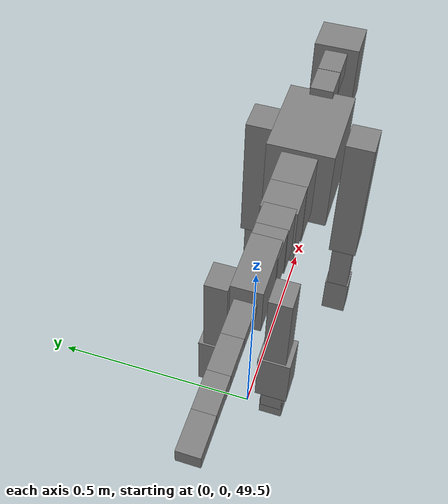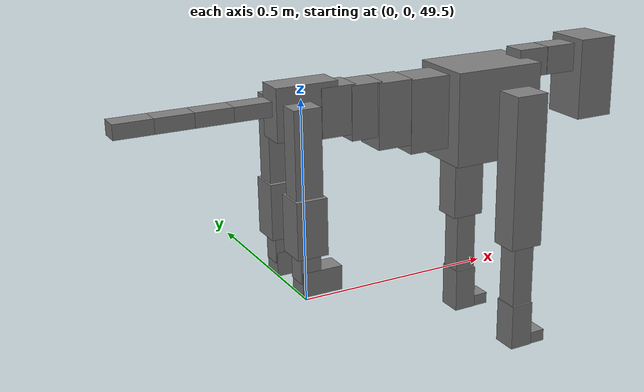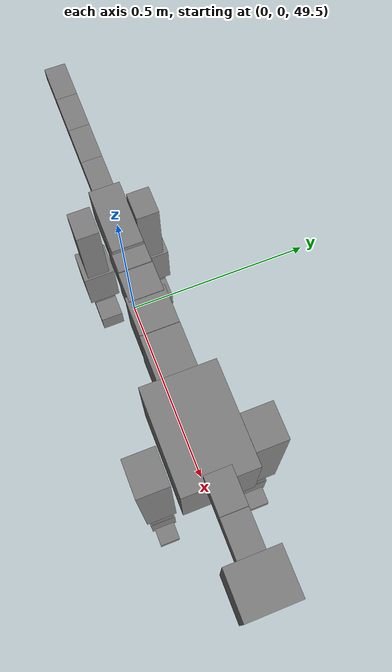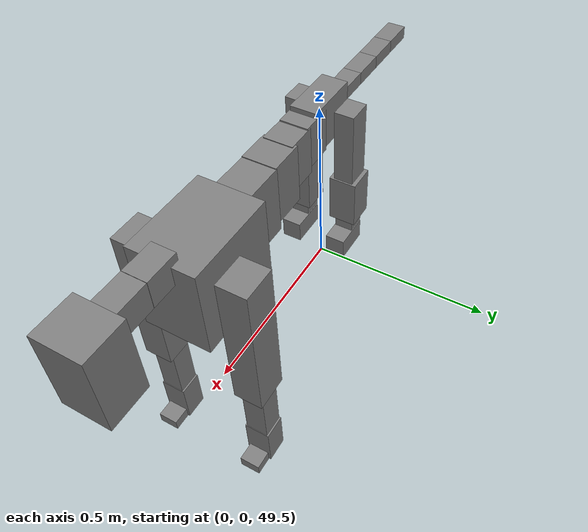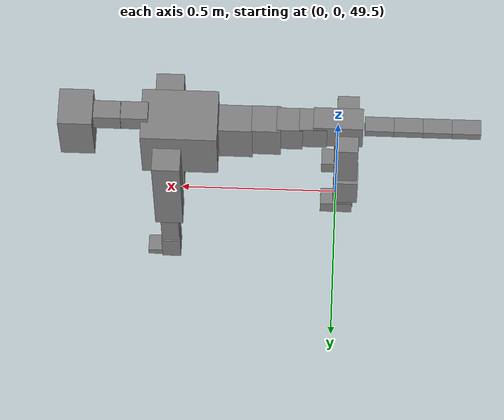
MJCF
<mujoco model="dog">

    <default>
        <joint armature="0.02" stiffness="1" damping="0.2" limited="true"/>
        <geom condim="3" friction="1 0.05 0.05" margin="0.01"/>
        <motor ctrllimited="true" ctrlrange="-1.0 1.0" forcelimited="true" gear="50"/>
    </default>

    <compiler inertiafromgeom="true" angle="radian"/>

    <option timestep="0.016" iterations="50" tolerance="1e-10" solver="Newton" jacobian="dense" cone="pyramidal"/>

    <size nconmax="20000" njmax="60000" nstack="5000000"/>
    <visual>
        <map force="0.1" zfar="30"/>
        <rgba haze="0.15 0.25 0.35 1"/>
        <quality shadowsize="2048"/>
        <global offwidth="800" offheight="800"/>
    </visual>

    <asset>
        <texture type="skybox" builtin="gradient" rgb1="0.3 0.5 0.7" rgb2="0 0 0" width="512" height="512"/>
        <texture name="texplane" type="2d" builtin="checker" rgb1=".2 .3 .4" rgb2=".1 0.15 0.2" width="512" height="512"
                 mark="cross" markrgb=".8 .8 .8"/>
        <texture name="texgeom" type="cube" builtin="flat" mark="cross" width="127" height="1278" rgb1="0.8 0.6 0.4"
                 rgb2="0.8 0.6 0.4" markrgb="1 1 1" random="0.01"/>

        <material name="matplane" reflectance="0.3" texture="texplane" texrepeat="1 1" texuniform="true"/>
        <material name="matgeom" texture="texgeom" texuniform="true" rgba="0.8 0.6 .4 1"/>
    </asset>

    <worldbody>
        <geom name="floor" pos="0 0 0" size="0 0 .25" type="plane" material="matplane" condim="3"/>

        <light directional="false" diffuse=".2 .2 .2" specular="0 0 0" pos="0 0 5" dir="0 0 -1" castshadow="false"/>
        <light mode="targetbodycom" target="torso" directional="false" diffuse=".8 .8 .8" specular="0.3 0.3 0.3"
               pos="0 0 4.0" dir="0 0 -1"/>

        <body name="root" pos="0 0 50">
            <freejoint name="root_1"/>
            <geom type="box" pos="0 0 -0.02" size="0.0774  0.0358  0.063" density="2030"/>

            <body name="spine1" pos="0.054 0 0">
                <joint name="spine1_y" axis="0 1 0" range="0 0.7" limited="true"/>
                <geom type="box" pos="0.02375 0 -0.03" size="0.04375  0.0375  0.05985" density="2030"/>

                <body name="spine2" pos="0.0612 0 0">
                    <joint name="spine2_y" axis="0 1 0" range="-0.15 0.15" limited="true"/>
                    <geom type="box" pos="0.03555  0  -0.04" size="0.04055  0.039  0.06615" density="2030"/>

                    <body name="spine3" pos="0.0730 0 0">
                        <joint name="spine3_y" axis="0 1 0" range="-0.15 0.15" limited="true"/>
                        <geom type="box" pos="0.03555  0  -0.057" size="0.04555  0.0445  0.081" density="2030"/>

                        <body name="spine4" pos="0.0780 0 0">
                            <joint name="spine4_y" axis="0 1 0" range="-0.15 0.15" limited="true"/>
                            <geom type="box" pos="0.05265  0  -0.07" size="0.05265  0.045  0.09135" density="2030"/>

                            <body name="torso" pos="0.1082 0 0">
                                <joint name="torso_y" axis="0 1 0" range="-0.15 0.15" limited="true"/>
                                <geom type="box" pos="0.11925  0  -0.085" size="0.11925  0.085  0.11745"
                                      density="2030"/>

                                <body name="neck1" pos="0.2160  0   0.0180">
                                    <joint name="neck1_y" axis="0 1 0" range="-1.2  -1" limited="true"/>
                                    <geom type="box" pos="0.0423  0  0" size="0.0423  0.03  0.036" density="2325"/>

                                    <body name="neck2" pos="0.0853  0  0">
                                        <joint name="neck2_y" axis="0 1 0" range="0.1  0" limited="true"/>
                                        <geom type="box" pos="0.0423  0  0" size="0.0423  0.03  0.036" density="2325"/>

                                        <body name="head" pos="0.0853  0  0">
                                            <joint name="head_y" axis="0 1 0" range="-0.3  -0.2" limited="true"/>
                                            <geom type="box" pos="0.0531  0  -0.055" size="0.0531  0.06  0.1044"
                                                  density="4030"/>

                                        </body>
                                    </body>
                                </body>

                                <body name="front_shoulder" pos="0.156  0   -0.0480">
                                    <joint name="front_shoulder_y" axis="0 1 0" range="-1 1.5" limited="true"/>
                                    <geom type="box" pos="0 0.13 -0.1704" size="0.0441  0.0377  0.1971" density="1158"/>
                                    <geom type="box" pos="0 -0.13 -0.1704" size="0.0441  0.0377  0.1971"
                                          density="1158"/>

                                    <body name="front_elbow" pos="0  0  -0.3408">
                                        <joint name="front_elbow_y" axis="0 1 0" range="-2 0" limited="true"/>
                                        <geom type="box" pos="0 0.13 -0.0990" size="0.0286  0.0292  0.0990"
                                              density="1081"/>
                                        <geom type="box" pos="0 -0.13 -0.0990" size="0.0286  0.0292  0.0990"
                                              density="1081"/>

                                        <body name="front_wrist" pos="0  0  -0.1979">
                                            <joint name="front_wrist_y" axis="0 1 0" range="-0.2 0" limited="true"/>
                                            <geom type="box" pos="0 0.13 -0.0459" size="0.0302  0.0335  0.0590"
                                                  density="1664"/>
                                            <geom type="box" pos="0 -0.13 -0.0459" size="0.0302  0.0335  0.0590"
                                                  density="1664"/>

                                            <body name="front_finger_end" pos="0  0  -0.0918">
                                                <joint name="front_finger_y" axis="0 1 0" range="-0.4 1"
                                                       limited="true"/>
                                                <geom type="box" pos="0.0269  0.13  -0.0006"
                                                      size="0.0493  0.0269  0.0156" density="1515"/>
                                                <geom type="box" pos="0.0269  -0.13  -0.0006"
                                                      size="0.0493  0.0269  0.0156" density="1515"/>

                                            </body>

                                        </body>
                                    </body>
                                </body>

                            </body>
                        </body>
                    </body>
                </body>
            </body>

            <body name="back_hip" pos="-0.03 0 -0.018">
                <joint name="back_hip_y" axis="0 1 0" range="-1.5 0.3" limited="true"/>
                <geom type="box" pos="0 0.07 -0.1012" size="0.0339  0.0266  0.1240" density="1154"/>
                <geom type="box" pos="0 -0.07 -0.1012" size="0.0339  0.0266  0.1240" density="1154"/>

                <body name="back_knee" pos="0  0  -0.2023">
                    <joint name="back_knee_y" axis="0 1 0" range="0 2.8" limited="true"/>
                    <geom type="box" pos="0 0.07 -0.0540" size="0.0384  0.0378  0.0696" density="1227"/>
                    <geom type="box" pos="0 -0.07 -0.0540" size="0.0384  0.0378  0.0696" density="1227"/>

                    <body name="back_ankle" pos="0  0  -0.1081">
                        <joint name="back_ankle_y" axis="0 1 0" range="-2.2 0" limited="true"/>
                        <geom type="box" pos="0 0.07 -0.0347" size="0.0254  0.0254  0.0460" density="1284"/>
                        <geom type="box" pos="0 -0.07 -0.0347" size="0.0254  0.0254  0.0460" density="1284"/>

                        <body name="back_toe_end" pos="0  0  -0.0694">
                            <joint name="back_toe_y" axis="0 1 0" range="-0.4 1" limited="true"/>
                            <geom type="box" pos="0.0275  0.07  -0.0150" size="0.0505  0.0275  0.0300" density="1515"/>
                            <geom type="box" pos="0.0275  -0.07  -0.0150" size="0.0505  0.0275  0.0300" density="1515"/>

                        </body>
                    </body>
                </body>
            </body>

            <body name="tail1" pos="-0.074 0 -0.006">
                <joint name="tail1_y" axis="0 1 0" range="-0.2 0.2" limited="true"/>
                <geom type="box" pos="-0.0536  0  0" size="0.045  0.025  0.0175" density="1587"/>

                <body name="tail2" pos="-0.09 0 0">
                    <joint name="tail2_y" axis="0 1 0" range="-0.2 0.2" limited="true"/>
                    <geom type="box" pos="-0.0536  0  0" size="0.045  0.025  0.0175" density="1587"/>

                    <body name="tail3" pos="-0.09 0 0">
                        <joint name="tail3_y" axis="0 1 0" range="-0.2 0.2" limited="true"/>
                        <geom type="box" pos="-0.0536  0  0" size="0.045  0.025  0.0175" density="1587"/>

                        <body name="tail4" pos="-0.09 0 0">
                            <joint name="tail4_y" axis="0 1 0" range="-0.2 0.2" limited="true"/>
                            <geom type="box" pos="-0.0536  0  0" size="0.045  0.025  0.0175" density="1587"/>

                        </body>
                    </body>
                </body>
            </body>
        </body>
    </worldbody>

    <actuator>
        <motor joint="spine1_y" forcerange="-150 150     "/>
        <motor joint="spine2_y" forcerange="-150 150     "/>
        <motor joint="spine3_y" forcerange="-150 150     "/>
        <motor joint="spine4_y" forcerange="-150 150     "/>
        <motor joint="torso_y" forcerange="-150 150     "/>
        <motor joint="neck1_y" forcerange="-100 100       "/>
        <motor joint="neck2_y" forcerange="-100 100       "/>
        <motor joint="head_y" forcerange="-150 150       "/>
        <motor joint="front_shoulder_y" forcerange="-156.34 194.84"/>
        <motor joint="front_elbow_y" forcerange="-158.83 153.61"/>
        <motor joint="front_wrist_y" forcerange="-122.33 145.95"/>
        <motor joint="front_finger_y" forcerange="-27.24 76.19"/>
        <motor joint="back_hip_y" forcerange="-239.62 314.53"/>
        <motor joint="back_knee_y" forcerange="-389.31 360.54"/>
        <motor joint="back_angle_y" forcerange="-166.30 139.63"/>
        <motor joint="back_toe_y" forcerange="-71.55 68.73"/>
        <motor joint="tail1_y" forcerange="-50 50     "/>
        <motor joint="tail2_y" forcerange="-50 50     "/>
        <motor joint="tail3_y" forcerange="-50 50     "/>
        <motor joint="tail4_y" forcerange="-50 50     "/>
    </actuator>
</mujoco>
